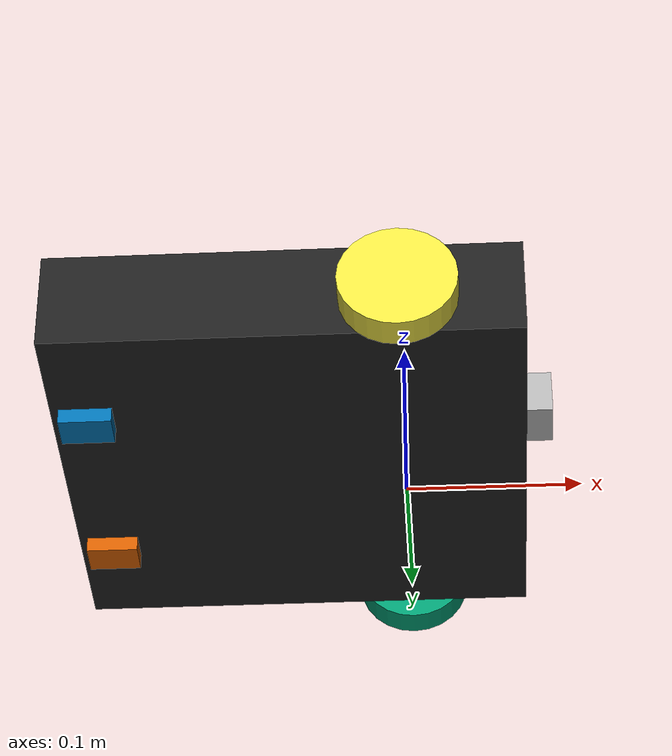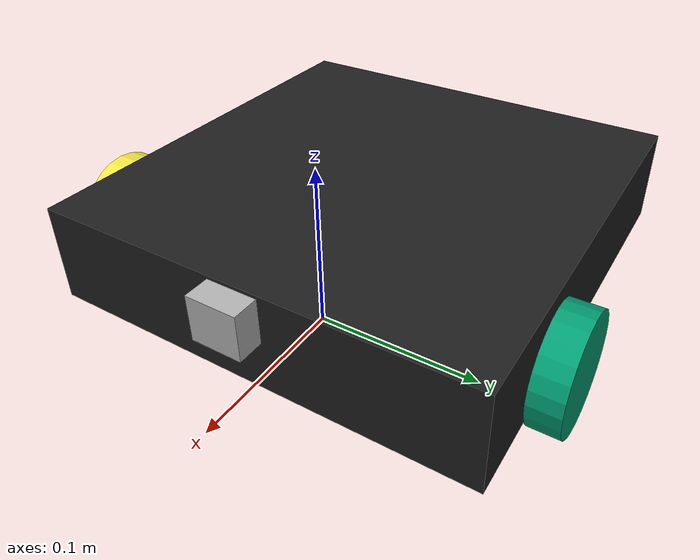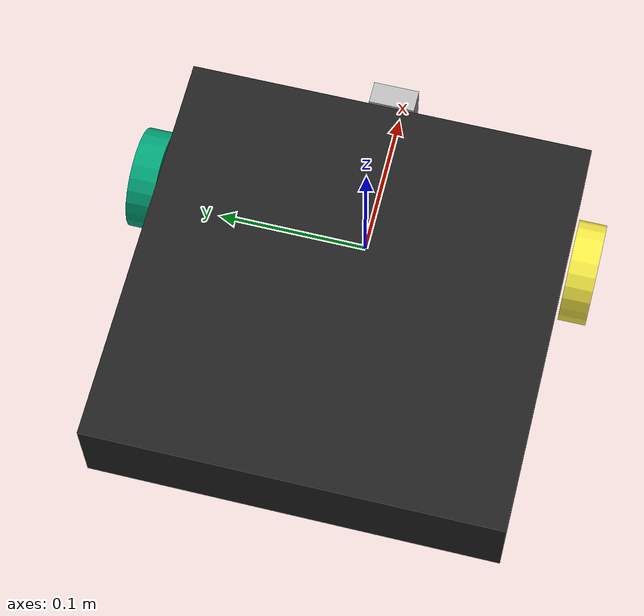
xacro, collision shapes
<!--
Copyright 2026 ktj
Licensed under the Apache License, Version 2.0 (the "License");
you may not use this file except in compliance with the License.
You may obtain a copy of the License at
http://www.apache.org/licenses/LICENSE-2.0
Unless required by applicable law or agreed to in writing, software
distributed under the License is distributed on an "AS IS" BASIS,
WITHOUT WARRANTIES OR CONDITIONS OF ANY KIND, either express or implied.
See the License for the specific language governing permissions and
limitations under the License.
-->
<?xml version="1.0"?>
<robot name="turtlebot3_platooning" xmlns:xacro="http://www.ros.org/wiki/xacro">
  <xacro:arg name="prefix" default="" />

  <xacro:include filename="$(find turtlebot3_manipulation_description)/gazebo/materials.xacro" />
  <xacro:include filename="$(find turtlebot3_manipulation_description)/xacro/turtlebot3_platooning.xacro" />

  <xacro:turtlebot3_waffle_pi prefix="$(arg prefix)" />
</robot>

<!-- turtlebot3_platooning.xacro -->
<!-- TurtleBot3 Waffle Pi -->
<!--
Copied and modified from turtlebot3 example -
https://github.com/ROBOTIS-GIT/turtlebot3/blob/kinetic-devel/turtlebot3_description/urdf/turtlebot3_waffle_pi_for_open_manipulator.urdf.xacro
-->
<robot xmlns:xacro="http://www.ros.org/wiki/xacro">

  <xacro:macro name="turtlebot3_waffle_pi" params="prefix">

  <xacro:property
    name="meshes_file_direction"
    value="package://turtlebot3_manipulation_description/meshes/turtlebot3_waffle_pi"/>

  <link name="${prefix}base_footprint"/>

  <joint name="${prefix}base_joint" type="fixed">
    <parent link="${prefix}base_footprint"/>
    <child link="${prefix}base_link" />
    <origin xyz="0 0 0.010" rpy="0 0 0"/>
  </joint>

  <link name="${prefix}base_link">
    <visual>
      <origin xyz="-0.064 0 0.0" rpy="0 0 0"/>
      <geometry>
        <mesh filename="${meshes_file_direction}/base.stl" scale="0.001 0.001 0.000551"/>
      </geometry>
      <material name="light_black"/>
    </visual>

    <collision>
      <origin xyz="-0.064 0 0.030" rpy="0 0 0"/>
      <geometry>
        <box size="0.266 0.266 0.060"/>
      </geometry>
    </collision>

    <inertial>
      <origin xyz="0 0 0" rpy="0 0 0"/>
      <mass value="1.3729096e+00"/>
      <inertia ixx="8.7002718e-03" ixy="-4.7576583e-05" ixz="1.1160499e-04"
               iyy="8.6195418e-03" iyz="-3.5422299e-06"
               izz="1.4612727e-02" />
    </inertial>
  </link>

  <joint name="${prefix}wheel_left_joint" type="continuous">
    <parent link="${prefix}base_link"/>
    <child link="${prefix}wheel_left_link"/>
    <origin xyz="0.0 0.144 0.023" rpy="-1.57079632679 0 0"/>
    <axis xyz="0 0 1"/>
  </joint>

  <link name="${prefix}wheel_left_link">
    <visual>
      <origin xyz="0 0 0" rpy="1.57079632679 0 0"/>
      <geometry>
        <mesh filename="${meshes_file_direction}/left_tire.stl" scale="0.001 0.001 0.001"/>
      </geometry>
      <material name="dark"/>
    </visual>

    <collision>
      <origin xyz="0 0 0" rpy="0 0 0"/>
      <geometry>
        <cylinder length="0.018" radius="0.033"/>
      </geometry>
    </collision>

    <inertial>
      <origin xyz="0 0 0" />
      <mass value="2.8498940e-02" />
      <inertia ixx="1.1175580e-05" ixy="-4.2369783e-11" ixz="-5.9381719e-09"
               iyy="1.1192413e-05" iyz="-1.4400107e-11"
               izz="2.0712558e-05" />
      </inertial>
  </link>

  <joint name="${prefix}wheel_right_joint" type="continuous">
    <parent link="${prefix}base_link"/>
    <child link="${prefix}wheel_right_link"/>
    <origin xyz="0.0 -0.144 0.023" rpy="-1.57079632679 0 0"/>
    <axis xyz="0 0 1"/>
  </joint>

  <link name="${prefix}wheel_right_link">
    <visual>
      <origin xyz="0 0 0" rpy="1.57079632679 0 0"/>
      <geometry>
        <mesh filename="${meshes_file_direction}/right_tire.stl" scale="0.001 0.001 0.001"/>
      </geometry>
      <material name="dark"/>
    </visual>

    <collision>
      <origin xyz="0 0 0" rpy="0 0 0"/>
      <geometry>
        <cylinder length="0.018" radius="0.033"/>
      </geometry>
    </collision>

    <inertial>
      <origin xyz="0 0 0" />
      <mass value="2.8498940e-02" />
      <inertia ixx="1.1175580e-05" ixy="-4.2369783e-11" ixz="-5.9381719e-09"
               iyy="1.1192413e-05" iyz="-1.4400107e-11"
               izz="2.0712558e-05" />
      </inertial>
  </link>

  <joint name="${prefix}caster_back_right_joint" type="fixed">
    <parent link="${prefix}base_link"/>
    <child link="${prefix}caster_back_right_link"/>
    <origin xyz="-0.177 -0.064 -0.004" rpy="-1.57079632679 0 0"/>
  </joint>

  <link name="${prefix}caster_back_right_link">
    <collision>
      <origin xyz="0 0.001 0" rpy="0 0 0"/>
      <geometry>
        <box size="0.030 0.009 0.020"/>
      </geometry>
    </collision>

    <inertial>
      <origin xyz="0 0 0" />
      <mass value="0.005" />
      <inertia ixx="0.001" ixy="0.0" ixz="0.0"
               iyy="0.001" iyz="0.0"
               izz="0.001" />
    </inertial>
  </link>

  <joint name="${prefix}caster_back_left_joint" type="fixed">
    <parent link="${prefix}base_link"/>
    <child link="${prefix}caster_back_left_link"/>
    <origin xyz="-0.177 0.064 -0.004" rpy="-1.57079632679 0 0"/>
  </joint>

  <link name="${prefix}caster_back_left_link">
    <collision>
      <origin xyz="0 0.001 0" rpy="0 0 0"/>
      <geometry>
        <box size="0.030 0.009 0.020"/>
      </geometry>
    </collision>

    <inertial>
      <origin xyz="0 0 0" />
      <mass value="0.005" />
      <inertia ixx="0.001" ixy="0.0" ixz="0.0"
               iyy="0.001" iyz="0.0"
               izz="0.001" />
    </inertial>
  </link>

  <joint name="${prefix}imu_joint" type="fixed">
    <parent link="${prefix}base_link"/>
    <child link="${prefix}imu_link"/>
    <origin xyz="0.0 0 0.020" rpy="0 0 0"/>
  </joint>

  <link name="${prefix}imu_link"/>

  <joint name="${prefix}camera_joint" type="fixed">
    <parent link="${prefix}base_link"/>
    <child link="${prefix}camera_link"/>
    <origin xyz="0.073 -0.011 0.033" rpy="0 0 0"/>
  </joint>

  <link name="${prefix}camera_link">
    <collision>
      <origin xyz="0.005 0.011 0.013" rpy="0 0 0"/>
      <geometry>
        <box size="0.015 0.030 0.027"/>
      </geometry>
    </collision>
  </link>

  <joint name="${prefix}camera_rgb_joint" type="fixed">
    <parent link="${prefix}camera_link"/>
    <child link="${prefix}camera_rgb_frame"/>
    <origin xyz="0.003 0.011 0.009" rpy="0 0 0"/>
  </joint>

  <link name="${prefix}camera_rgb_frame"/>

  <joint name="${prefix}camera_rgb_optical_joint" type="fixed">
    <parent link="${prefix}camera_rgb_frame"/>
    <child link="${prefix}camera_rgb_optical_frame"/>
    <origin xyz="0 0 0" rpy="-1.57079632679 0 -1.57079632679"/>
  </joint>

  <link name="${prefix}camera_rgb_optical_frame"/>

  </xacro:macro>

</robot>
